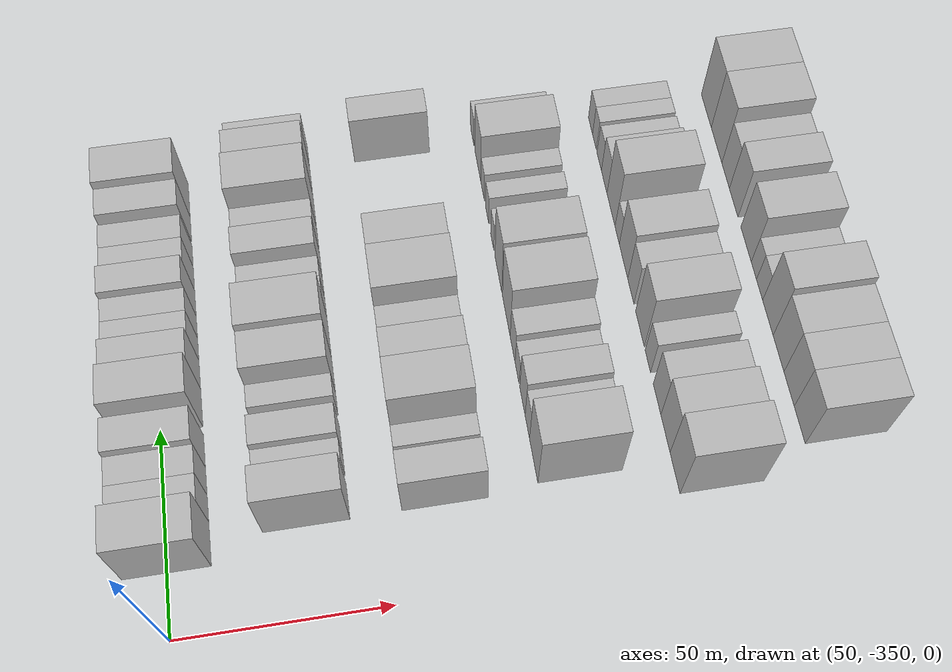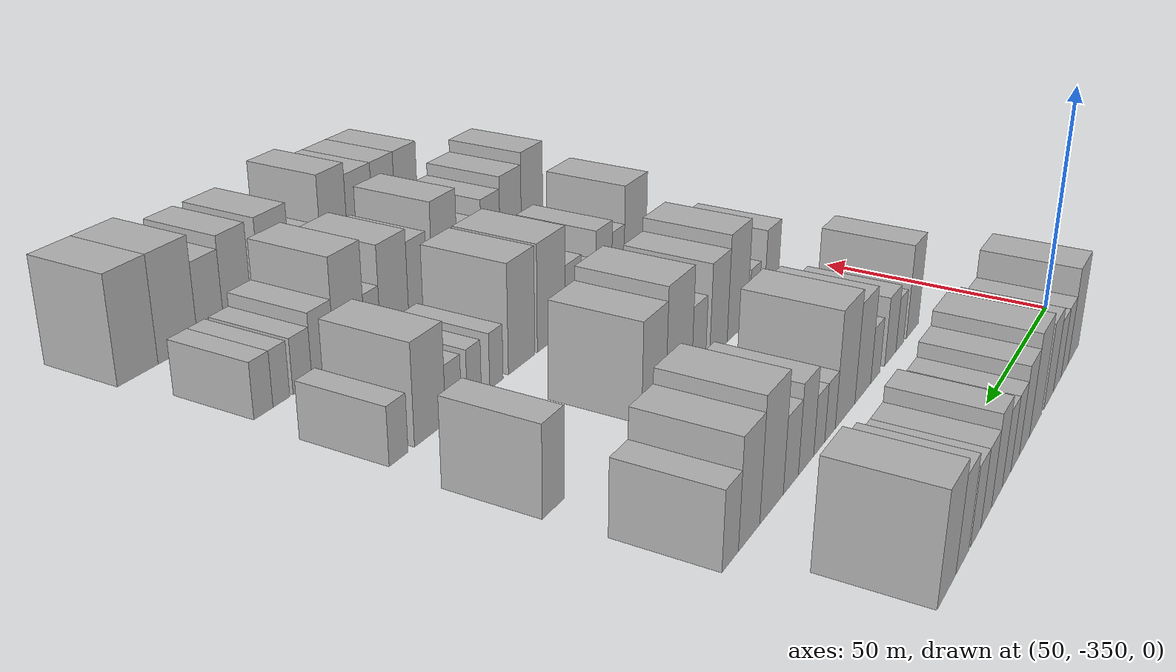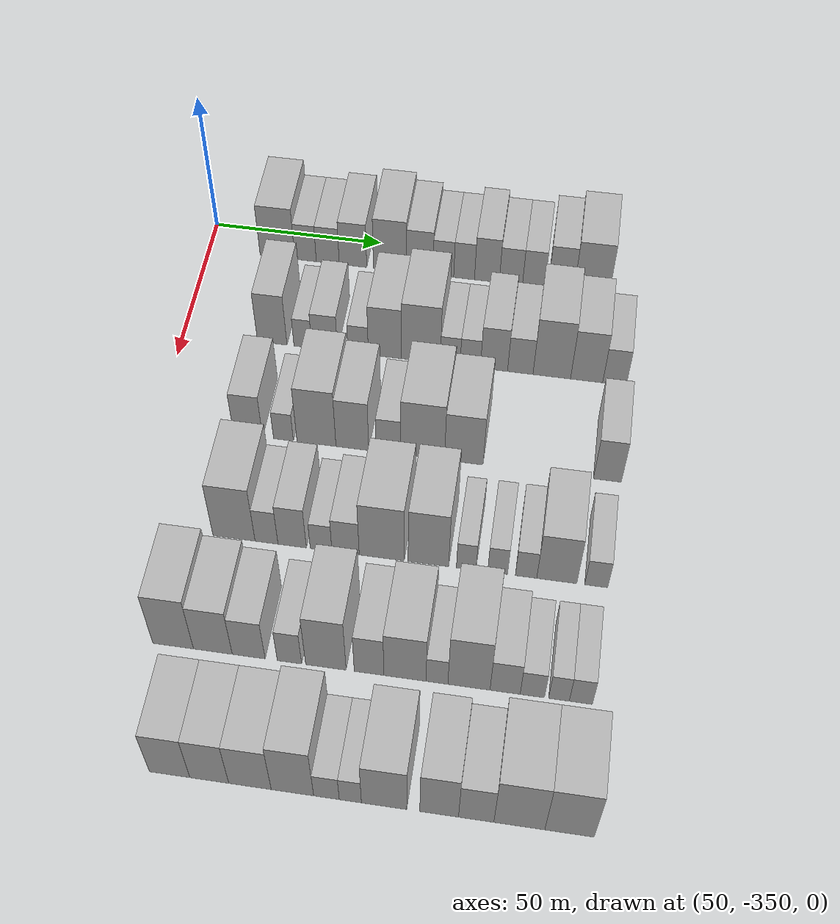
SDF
<sdf version="1.6">
 <world name="default">
  <model name="building_22">
   <static>1</static>
   <pose>50.0000 -329.4277 0 0.000000 0.000000 0.000000</pose>
   <link name="link">
    <pose>0 0 10.50 0 0 0</pose>
    <collision name="collision"><geometry><box><size>20.0000 10.4413 21.0000</size></box></geometry></collision>
    <visual name="visual">
     <cast_shadows>0</cast_shadows>
     <geometry><box><size>20.0000 10.4413 21.0000</size></box></geometry>
     <material>
      <script>
       <uri>model://HANNAS_wall/materials/scripts</uri>
       <uri>model://HANNAS_wall/materials/textures</uri>
       <name>vrc/HANNAS_wall</name>
      </script>
     </material>
    </visual>
   </link>
  </model>
  <model name="building_23">
   <static>1</static>
   <pose>50.0000 -320.9701 0 0.000000 0.000000 0.000000</pose>
   <link name="link">
    <pose>0 0 7.50 0 0 0</pose>
    <collision name="collision"><geometry><box><size>20.0000 6.4739 15.0000</size></box></geometry></collision>
    <visual name="visual">
     <cast_shadows>0</cast_shadows>
     <geometry><box><size>20.0000 6.4739 15.0000</size></box></geometry>
     <material>
      <script>
       <uri>model://HANNAS_wall/materials/scripts</uri>
       <uri>model://HANNAS_wall/materials/textures</uri>
       <name>vrc/HANNAS_wall</name>
      </script>
     </material>
    </visual>
   </link>
  </model>
  <model name="building_24">
   <static>1</static>
   <pose>50.0000 -314.2927 0 0.000000 0.000000 0.000000</pose>
   <link name="link">
    <pose>0 0 7.50 0 0 0</pose>
    <collision name="collision"><geometry><box><size>20.0000 6.8808 15.0000</size></box></geometry></collision>
    <visual name="visual">
     <cast_shadows>0</cast_shadows>
     <geometry><box><size>20.0000 6.8808 15.0000</size></box></geometry>
     <material>
      <script>
       <uri>model://HANNAS_wall/materials/scripts</uri>
       <uri>model://HANNAS_wall/materials/textures</uri>
       <name>vrc/HANNAS_wall</name>
      </script>
     </material>
    </visual>
   </link>
  </model>
  <model name="building_25">
   <static>1</static>
   <pose>50.0000 -306.7463 0 0.000000 0.000000 0.000000</pose>
   <link name="link">
    <pose>0 0 9.00 0 0 0</pose>
    <collision name="collision"><geometry><box><size>20.0000 8.2120 18.0000</size></box></geometry></collision>
    <visual name="visual">
     <cast_shadows>0</cast_shadows>
     <geometry><box><size>20.0000 8.2120 18.0000</size></box></geometry>
     <material>
      <script>
       <uri>model://HANNAS_wall/materials/scripts</uri>
       <uri>model://HANNAS_wall/materials/textures</uri>
       <name>vrc/HANNAS_wall</name>
      </script>
     </material>
    </visual>
   </link>
  </model>
  <model name="building_26">
   <static>1</static>
   <pose>50.0000 -295.7055 0 0.000000 0.000000 0.000000</pose>
   <link name="link">
    <pose>0 0 10.50 0 0 0</pose>
    <collision name="collision"><geometry><box><size>20.0000 9.8696 21.0000</size></box></geometry></collision>
    <visual name="visual">
     <cast_shadows>0</cast_shadows>
     <geometry><box><size>20.0000 9.8696 21.0000</size></box></geometry>
     <material>
      <script>
       <uri>model://HANNAS_wall/materials/scripts</uri>
       <uri>model://HANNAS_wall/materials/textures</uri>
       <name>vrc/HANNAS_wall</name>
      </script>
     </material>
    </visual>
   </link>
  </model>
  <model name="building_27">
   <static>1</static>
   <pose>50.0000 -286.8508 0 0.000000 0.000000 0.000000</pose>
   <link name="link">
    <pose>0 0 9.00 0 0 0</pose>
    <collision name="collision"><geometry><box><size>20.0000 7.8398 18.0000</size></box></geometry></collision>
    <visual name="visual">
     <cast_shadows>0</cast_shadows>
     <geometry><box><size>20.0000 7.8398 18.0000</size></box></geometry>
     <material>
      <script>
       <uri>model://HANNAS_wall/materials/scripts</uri>
       <uri>model://HANNAS_wall/materials/textures</uri>
       <name>vrc/HANNAS_wall</name>
      </script>
     </material>
    </visual>
   </link>
  </model>
  <model name="building_28">
   <static>1</static>
   <pose>50.0000 -279.8748 0 0.000000 0.000000 0.000000</pose>
   <link name="link">
    <pose>0 0 7.50 0 0 0</pose>
    <collision name="collision"><geometry><box><size>20.0000 6.1122 15.0000</size></box></geometry></collision>
    <visual name="visual">
     <cast_shadows>0</cast_shadows>
     <geometry><box><size>20.0000 6.1122 15.0000</size></box></geometry>
     <material>
      <script>
       <uri>model://HANNAS_wall/materials/scripts</uri>
       <uri>model://HANNAS_wall/materials/textures</uri>
       <name>vrc/HANNAS_wall</name>
      </script>
     </material>
    </visual>
   </link>
  </model>
  <model name="building_29">
   <static>1</static>
   <pose>50.0000 -273.7574 0 0.000000 0.000000 0.000000</pose>
   <link name="link">
    <pose>0 0 7.50 0 0 0</pose>
    <collision name="collision"><geometry><box><size>20.0000 6.1226 15.0000</size></box></geometry></collision>
    <visual name="visual">
     <cast_shadows>0</cast_shadows>
     <geometry><box><size>20.0000 6.1226 15.0000</size></box></geometry>
     <material>
      <script>
       <uri>model://HANNAS_wall/materials/scripts</uri>
       <uri>model://HANNAS_wall/materials/textures</uri>
       <name>vrc/HANNAS_wall</name>
      </script>
     </material>
    </visual>
   </link>
  </model>
  <model name="building_30">
   <static>1</static>
   <pose>50.0000 -267.0461 0 0.000000 0.000000 0.000000</pose>
   <link name="link">
    <pose>0 0 9.00 0 0 0</pose>
    <collision name="collision"><geometry><box><size>20.0000 7.3000 18.0000</size></box></geometry></collision>
    <visual name="visual">
     <cast_shadows>0</cast_shadows>
     <geometry><box><size>20.0000 7.3000 18.0000</size></box></geometry>
     <material>
      <script>
       <uri>model://HANNAS_wall/materials/scripts</uri>
       <uri>model://HANNAS_wall/materials/textures</uri>
       <name>vrc/HANNAS_wall</name>
      </script>
     </material>
    </visual>
   </link>
  </model>
  <model name="building_31">
   <static>1</static>
   <pose>50.0000 -259.9950 0 0.000000 0.000000 0.000000</pose>
   <link name="link">
    <pose>0 0 7.50 0 0 0</pose>
    <collision name="collision"><geometry><box><size>20.0000 6.8023 15.0000</size></box></geometry></collision>
    <visual name="visual">
     <cast_shadows>0</cast_shadows>
     <geometry><box><size>20.0000 6.8023 15.0000</size></box></geometry>
     <material>
      <script>
       <uri>model://HANNAS_wall/materials/scripts</uri>
       <uri>model://HANNAS_wall/materials/textures</uri>
       <name>vrc/HANNAS_wall</name>
      </script>
     </material>
    </visual>
   </link>
  </model>
  <model name="building_32">
   <static>1</static>
   <pose>50.0000 -253.3541 0 0.000000 0.000000 0.000000</pose>
   <link name="link">
    <pose>0 0 7.50 0 0 0</pose>
    <collision name="collision"><geometry><box><size>20.0000 6.4795 15.0000</size></box></geometry></collision>
    <visual name="visual">
     <cast_shadows>0</cast_shadows>
     <geometry><box><size>20.0000 6.4795 15.0000</size></box></geometry>
     <material>
      <script>
       <uri>model://HANNAS_wall/materials/scripts</uri>
       <uri>model://HANNAS_wall/materials/textures</uri>
       <name>vrc/HANNAS_wall</name>
      </script>
     </material>
    </visual>
   </link>
  </model>
  <model name="building_33">
   <static>1</static>
   <pose>50.0000 -245.3383 0 0.000000 0.000000 0.000000</pose>
   <link name="link">
    <pose>0 0 9.00 0 0 0</pose>
    <collision name="collision"><geometry><box><size>20.0000 7.5522 18.0000</size></box></geometry></collision>
    <visual name="visual">
     <cast_shadows>0</cast_shadows>
     <geometry><box><size>20.0000 7.5522 18.0000</size></box></geometry>
     <material>
      <script>
       <uri>model://HANNAS_wall/materials/scripts</uri>
       <uri>model://HANNAS_wall/materials/textures</uri>
       <name>vrc/HANNAS_wall</name>
      </script>
     </material>
    </visual>
   </link>
  </model>
  <model name="building_34">
   <static>1</static>
   <pose>50.0000 -236.4442 0 0.000000 0.000000 0.000000</pose>
   <link name="link">
    <pose>0 0 10.50 0 0 0</pose>
    <collision name="collision"><geometry><box><size>20.0000 10.2360 21.0000</size></box></geometry></collision>
    <visual name="visual">
     <cast_shadows>0</cast_shadows>
     <geometry><box><size>20.0000 10.2360 21.0000</size></box></geometry>
     <material>
      <script>
       <uri>model://HANNAS_wall/materials/scripts</uri>
       <uri>model://HANNAS_wall/materials/textures</uri>
       <name>vrc/HANNAS_wall</name>
      </script>
     </material>
    </visual>
   </link>
  </model>
  <model name="building_141">
   <static>1</static>
   <pose>82.0000 -324.4266 0 0.000000 0.000000 0.000000</pose>
   <link name="link">
    <pose>0 0 10.50 0 0 0</pose>
    <collision name="collision"><geometry><box><size>20.0000 8.4989 21.0000</size></box></geometry></collision>
    <visual name="visual">
     <cast_shadows>0</cast_shadows>
     <geometry><box><size>20.0000 8.4989 21.0000</size></box></geometry>
     <material>
      <script>
       <uri>model://HANNAS_wall/materials/scripts</uri>
       <uri>model://HANNAS_wall/materials/textures</uri>
       <name>vrc/HANNAS_wall</name>
      </script>
     </material>
    </visual>
   </link>
  </model>
  <model name="building_142">
   <static>1</static>
   <pose>82.0000 -315.6190 0 0.000000 0.000000 0.000000</pose>
   <link name="link">
    <pose>0 0 6.00 0 0 0</pose>
    <collision name="collision"><geometry><box><size>20.0000 5.1162 12.0000</size></box></geometry></collision>
    <visual name="visual">
     <cast_shadows>0</cast_shadows>
     <geometry><box><size>20.0000 5.1162 12.0000</size></box></geometry>
     <material>
      <script>
       <uri>model://HANNAS_wall/materials/scripts</uri>
       <uri>model://HANNAS_wall/materials/textures</uri>
       <name>vrc/HANNAS_wall</name>
      </script>
     </material>
    </visual>
   </link>
  </model>
  <model name="building_143">
   <static>1</static>
   <pose>82.0000 -309.3774 0 0.000000 0.000000 0.000000</pose>
   <link name="link">
    <pose>0 0 7.50 0 0 0</pose>
    <collision name="collision"><geometry><box><size>20.0000 7.3671 15.0000</size></box></geometry></collision>
    <visual name="visual">
     <cast_shadows>0</cast_shadows>
     <geometry><box><size>20.0000 7.3671 15.0000</size></box></geometry>
     <material>
      <script>
       <uri>model://HANNAS_wall/materials/scripts</uri>
       <uri>model://HANNAS_wall/materials/textures</uri>
       <name>vrc/HANNAS_wall</name>
      </script>
     </material>
    </visual>
   </link>
  </model>
  <model name="building_144">
   <static>1</static>
   <pose>82.0000 -299.7859 0 0.000000 0.000000 0.000000</pose>
   <link name="link">
    <pose>0 0 6.00 0 0 0</pose>
    <collision name="collision"><geometry><box><size>20.0000 5.8158 12.0000</size></box></geometry></collision>
    <visual name="visual">
     <cast_shadows>0</cast_shadows>
     <geometry><box><size>20.0000 5.8158 12.0000</size></box></geometry>
     <material>
      <script>
       <uri>model://HANNAS_wall/materials/scripts</uri>
       <uri>model://HANNAS_wall/materials/textures</uri>
       <name>vrc/HANNAS_wall</name>
      </script>
     </material>
    </visual>
   </link>
  </model>
  <model name="building_145">
   <static>1</static>
   <pose>82.0000 -292.1682 0 0.000000 0.000000 0.000000</pose>
   <link name="link">
    <pose>0 0 10.50 0 0 0</pose>
    <collision name="collision"><geometry><box><size>20.0000 9.4196 21.0000</size></box></geometry></collision>
    <visual name="visual">
     <cast_shadows>0</cast_shadows>
     <geometry><box><size>20.0000 9.4196 21.0000</size></box></geometry>
     <material>
      <script>
       <uri>model://HANNAS_wall/materials/scripts</uri>
       <uri>model://HANNAS_wall/materials/textures</uri>
       <name>vrc/HANNAS_wall</name>
      </script>
     </material>
    </visual>
   </link>
  </model>
  <model name="building_146">
   <static>1</static>
   <pose>82.0000 -281.9558 0 0.000000 0.000000 0.000000</pose>
   <link name="link">
    <pose>0 0 12.00 0 0 0</pose>
    <collision name="collision"><geometry><box><size>20.0000 11.0052 24.0000</size></box></geometry></collision>
    <visual name="visual">
     <cast_shadows>0</cast_shadows>
     <geometry><box><size>20.0000 11.0052 24.0000</size></box></geometry>
     <material>
      <script>
       <uri>model://HANNAS_wall/materials/scripts</uri>
       <uri>model://HANNAS_wall/materials/textures</uri>
       <name>vrc/HANNAS_wall</name>
      </script>
     </material>
    </visual>
   </link>
  </model>
  <model name="building_147">
   <static>1</static>
   <pose>82.0000 -273.6542 0 0.000000 0.000000 0.000000</pose>
   <link name="link">
    <pose>0 0 6.00 0 0 0</pose>
    <collision name="collision"><geometry><box><size>20.0000 5.5979 12.0000</size></box></geometry></collision>
    <visual name="visual">
     <cast_shadows>0</cast_shadows>
     <geometry><box><size>20.0000 5.5979 12.0000</size></box></geometry>
     <material>
      <script>
       <uri>model://HANNAS_wall/materials/scripts</uri>
       <uri>model://HANNAS_wall/materials/textures</uri>
       <name>vrc/HANNAS_wall</name>
      </script>
     </material>
    </visual>
   </link>
  </model>
  <model name="building_148">
   <static>1</static>
   <pose>82.0000 -268.0023 0 0.000000 0.000000 0.000000</pose>
   <link name="link">
    <pose>0 0 6.00 0 0 0</pose>
    <collision name="collision"><geometry><box><size>20.0000 5.7060 12.0000</size></box></geometry></collision>
    <visual name="visual">
     <cast_shadows>0</cast_shadows>
     <geometry><box><size>20.0000 5.7060 12.0000</size></box></geometry>
     <material>
      <script>
       <uri>model://HANNAS_wall/materials/scripts</uri>
       <uri>model://HANNAS_wall/materials/textures</uri>
       <name>vrc/HANNAS_wall</name>
      </script>
     </material>
    </visual>
   </link>
  </model>
  <model name="building_149">
   <static>1</static>
   <pose>82.0000 -261.3354 0 0.000000 0.000000 0.000000</pose>
   <link name="link">
    <pose>0 0 9.00 0 0 0</pose>
    <collision name="collision"><geometry><box><size>20.0000 7.6278 18.0000</size></box></geometry></collision>
    <visual name="visual">
     <cast_shadows>0</cast_shadows>
     <geometry><box><size>20.0000 7.6278 18.0000</size></box></geometry>
     <material>
      <script>
       <uri>model://HANNAS_wall/materials/scripts</uri>
       <uri>model://HANNAS_wall/materials/textures</uri>
       <name>vrc/HANNAS_wall</name>
      </script>
     </material>
    </visual>
   </link>
  </model>
  <model name="building_150">
   <static>1</static>
   <pose>82.0000 -253.9675 0 0.000000 0.000000 0.000000</pose>
   <link name="link">
    <pose>0 0 7.50 0 0 0</pose>
    <collision name="collision"><geometry><box><size>20.0000 7.1080 15.0000</size></box></geometry></collision>
    <visual name="visual">
     <cast_shadows>0</cast_shadows>
     <geometry><box><size>20.0000 7.1080 15.0000</size></box></geometry>
     <material>
      <script>
       <uri>model://HANNAS_wall/materials/scripts</uri>
       <uri>model://HANNAS_wall/materials/textures</uri>
       <name>vrc/HANNAS_wall</name>
      </script>
     </material>
    </visual>
   </link>
  </model>
  <model name="building_151">
   <static>1</static>
   <pose>82.0000 -245.1760 0 0.000000 0.000000 0.000000</pose>
   <link name="link">
    <pose>0 0 12.00 0 0 0</pose>
    <collision name="collision"><geometry><box><size>20.0000 10.4751 24.0000</size></box></geometry></collision>
    <visual name="visual">
     <cast_shadows>0</cast_shadows>
     <geometry><box><size>20.0000 10.4751 24.0000</size></box></geometry>
     <material>
      <script>
       <uri>model://HANNAS_wall/materials/scripts</uri>
       <uri>model://HANNAS_wall/materials/textures</uri>
       <name>vrc/HANNAS_wall</name>
      </script>
     </material>
    </visual>
   </link>
  </model>
  <model name="building_152">
   <static>1</static>
   <pose>82.0000 -235.4688 0 0.000000 0.000000 0.000000</pose>
   <link name="link">
    <pose>0 0 10.50 0 0 0</pose>
    <collision name="collision"><geometry><box><size>20.0000 8.9392 21.0000</size></box></geometry></collision>
    <visual name="visual">
     <cast_shadows>0</cast_shadows>
     <geometry><box><size>20.0000 8.9392 21.0000</size></box></geometry>
     <material>
      <script>
       <uri>model://HANNAS_wall/materials/scripts</uri>
       <uri>model://HANNAS_wall/materials/textures</uri>
       <name>vrc/HANNAS_wall</name>
      </script>
     </material>
    </visual>
   </link>
  </model>
  <model name="building_153">
   <static>1</static>
   <pose>82.0000 -227.7377 0 0.000000 0.000000 0.000000</pose>
   <link name="link">
    <pose>0 0 7.50 0 0 0</pose>
    <collision name="collision"><geometry><box><size>20.0000 6.5231 15.0000</size></box></geometry></collision>
    <visual name="visual">
     <cast_shadows>0</cast_shadows>
     <geometry><box><size>20.0000 6.5231 15.0000</size></box></geometry>
     <material>
      <script>
       <uri>model://HANNAS_wall/materials/scripts</uri>
       <uri>model://HANNAS_wall/materials/textures</uri>
       <name>vrc/HANNAS_wall</name>
      </script>
     </material>
    </visual>
   </link>
  </model>
  <model name="building_262">
   <static>1</static>
   <pose>114.0000 -324.5032 0 0.000000 0.000000 0.000000</pose>
   <link name="link">
    <pose>0 0 9.00 0 0 0</pose>
    <collision name="collision"><geometry><box><size>20.0000 8.0149 18.0000</size></box></geometry></collision>
    <visual name="visual">
     <cast_shadows>0</cast_shadows>
     <geometry><box><size>20.0000 8.0149 18.0000</size></box></geometry>
     <material>
      <script>
       <uri>model://HANNAS_wall/materials/scripts</uri>
       <uri>model://HANNAS_wall/materials/textures</uri>
       <name>vrc/HANNAS_wall</name>
      </script>
     </material>
    </visual>
   </link>
  </model>
  <model name="building_263">
   <static>1</static>
   <pose>114.0000 -314.7784 0 0.000000 0.000000 0.000000</pose>
   <link name="link">
    <pose>0 0 6.00 0 0 0</pose>
    <collision name="collision"><geometry><box><size>20.0000 5.4347 12.0000</size></box></geometry></collision>
    <visual name="visual">
     <cast_shadows>0</cast_shadows>
     <geometry><box><size>20.0000 5.4347 12.0000</size></box></geometry>
     <material>
      <script>
       <uri>model://HANNAS_wall/materials/scripts</uri>
       <uri>model://HANNAS_wall/materials/textures</uri>
       <name>vrc/HANNAS_wall</name>
      </script>
     </material>
    </visual>
   </link>
  </model>
  <model name="building_264">
   <static>1</static>
   <pose>114.0000 -305.7357 0 0.000000 0.000000 0.000000</pose>
   <link name="link">
    <pose>0 0 12.00 0 0 0</pose>
    <collision name="collision"><geometry><box><size>20.0000 10.6507 24.0000</size></box></geometry></collision>
    <visual name="visual">
     <cast_shadows>0</cast_shadows>
     <geometry><box><size>20.0000 10.6507 24.0000</size></box></geometry>
     <material>
      <script>
       <uri>model://HANNAS_wall/materials/scripts</uri>
       <uri>model://HANNAS_wall/materials/textures</uri>
       <name>vrc/HANNAS_wall</name>
      </script>
     </material>
    </visual>
   </link>
  </model>
  <model name="building_265">
   <static>1</static>
   <pose>114.0000 -295.9464 0 0.000000 0.000000 0.000000</pose>
   <link name="link">
    <pose>0 0 10.50 0 0 0</pose>
    <collision name="collision"><geometry><box><size>20.0000 8.9280 21.0000</size></box></geometry></collision>
    <visual name="visual">
     <cast_shadows>0</cast_shadows>
     <geometry><box><size>20.0000 8.9280 21.0000</size></box></geometry>
     <material>
      <script>
       <uri>model://HANNAS_wall/materials/scripts</uri>
       <uri>model://HANNAS_wall/materials/textures</uri>
       <name>vrc/HANNAS_wall</name>
      </script>
     </material>
    </visual>
   </link>
  </model>
  <model name="building_266">
   <static>1</static>
   <pose>114.0000 -286.1428 0 0.000000 0.000000 0.000000</pose>
   <link name="link">
    <pose>0 0 7.50 0 0 0</pose>
    <collision name="collision"><geometry><box><size>20.0000 6.6791 15.0000</size></box></geometry></collision>
    <visual name="visual">
     <cast_shadows>0</cast_shadows>
     <geometry><box><size>20.0000 6.6791 15.0000</size></box></geometry>
     <material>
      <script>
       <uri>model://HANNAS_wall/materials/scripts</uri>
       <uri>model://HANNAS_wall/materials/textures</uri>
       <name>vrc/HANNAS_wall</name>
      </script>
     </material>
    </visual>
   </link>
  </model>
  <model name="building_267">
   <static>1</static>
   <pose>114.0000 -276.8975 0 0.000000 0.000000 0.000000</pose>
   <link name="link">
    <pose>0 0 12.00 0 0 0</pose>
    <collision name="collision"><geometry><box><size>20.0000 11.8116 24.0000</size></box></geometry></collision>
    <visual name="visual">
     <cast_shadows>0</cast_shadows>
     <geometry><box><size>20.0000 11.8116 24.0000</size></box></geometry>
     <material>
      <script>
       <uri>model://HANNAS_wall/materials/scripts</uri>
       <uri>model://HANNAS_wall/materials/textures</uri>
       <name>vrc/HANNAS_wall</name>
      </script>
     </material>
    </visual>
   </link>
  </model>
  <model name="building_268">
   <static>1</static>
   <pose>114.0000 -265.8186 0 0.000000 0.000000 0.000000</pose>
   <link name="link">
    <pose>0 0 10.50 0 0 0</pose>
    <collision name="collision"><geometry><box><size>20.0000 10.3462 21.0000</size></box></geometry></collision>
    <visual name="visual">
     <cast_shadows>0</cast_shadows>
     <geometry><box><size>20.0000 10.3462 21.0000</size></box></geometry>
     <material>
      <script>
       <uri>model://HANNAS_wall/materials/scripts</uri>
       <uri>model://HANNAS_wall/materials/textures</uri>
       <name>vrc/HANNAS_wall</name>
      </script>
     </material>
    </visual>
   </link>
  </model>
  <model name="building_269">
   <static>1</static>
   <pose>114.0000 -227.5758 0 0.000000 0.000000 0.000000</pose>
   <link name="link">
    <pose>0 0 9.00 0 0 0</pose>
    <collision name="collision"><geometry><box><size>20.0000 7.3798 18.0000</size></box></geometry></collision>
    <visual name="visual">
     <cast_shadows>0</cast_shadows>
     <geometry><box><size>20.0000 7.3798 18.0000</size></box></geometry>
     <material>
      <script>
       <uri>model://HANNAS_wall/materials/scripts</uri>
       <uri>model://HANNAS_wall/materials/textures</uri>
       <name>vrc/HANNAS_wall</name>
      </script>
     </material>
    </visual>
   </link>
  </model>
  <model name="building_380">
   <static>1</static>
   <pose>146.0000 -321.3067 0 0.000000 0.000000 0.000000</pose>
   <link name="link">
    <pose>0 0 12.00 0 0 0</pose>
    <collision name="collision"><geometry><box><size>20.0000 11.0587 24.0000</size></box></geometry></collision>
    <visual name="visual">
     <cast_shadows>0</cast_shadows>
     <geometry><box><size>20.0000 11.0587 24.0000</size></box></geometry>
     <material>
      <script>
       <uri>model://HANNAS_wall/materials/scripts</uri>
       <uri>model://HANNAS_wall/materials/textures</uri>
       <name>vrc/HANNAS_wall</name>
      </script>
     </material>
    </visual>
   </link>
  </model>
  <model name="building_381">
   <static>1</static>
   <pose>146.0000 -312.7751 0 0.000000 0.000000 0.000000</pose>
   <link name="link">
    <pose>0 0 7.50 0 0 0</pose>
    <collision name="collision"><geometry><box><size>20.0000 6.0044 15.0000</size></box></geometry></collision>
    <visual name="visual">
     <cast_shadows>0</cast_shadows>
     <geometry><box><size>20.0000 6.0044 15.0000</size></box></geometry>
     <material>
      <script>
       <uri>model://HANNAS_wall/materials/scripts</uri>
       <uri>model://HANNAS_wall/materials/textures</uri>
       <name>vrc/HANNAS_wall</name>
      </script>
     </material>
    </visual>
   </link>
  </model>
  <model name="building_382">
   <static>1</static>
   <pose>146.0000 -306.0721 0 0.000000 0.000000 0.000000</pose>
   <link name="link">
    <pose>0 0 9.00 0 0 0</pose>
    <collision name="collision"><geometry><box><size>20.0000 7.4016 18.0000</size></box></geometry></collision>
    <visual name="visual">
     <cast_shadows>0</cast_shadows>
     <geometry><box><size>20.0000 7.4016 18.0000</size></box></geometry>
     <material>
      <script>
       <uri>model://HANNAS_wall/materials/scripts</uri>
       <uri>model://HANNAS_wall/materials/textures</uri>
       <name>vrc/HANNAS_wall</name>
      </script>
     </material>
    </visual>
   </link>
  </model>
  <model name="building_383">
   <static>1</static>
   <pose>146.0000 -298.5532 0 0.000000 0.000000 0.000000</pose>
   <link name="link">
    <pose>0 0 6.00 0 0 0</pose>
    <collision name="collision"><geometry><box><size>20.0000 5.6363 12.0000</size></box></geometry></collision>
    <visual name="visual">
     <cast_shadows>0</cast_shadows>
     <geometry><box><size>20.0000 5.6363 12.0000</size></box></geometry>
     <material>
      <script>
       <uri>model://HANNAS_wall/materials/scripts</uri>
       <uri>model://HANNAS_wall/materials/textures</uri>
       <name>vrc/HANNAS_wall</name>
      </script>
     </material>
    </visual>
   </link>
  </model>
  <model name="building_384">
   <static>1</static>
   <pose>146.0000 -292.2032 0 0.000000 0.000000 0.000000</pose>
   <link name="link">
    <pose>0 0 7.50 0 0 0</pose>
    <collision name="collision"><geometry><box><size>20.0000 7.0637 15.0000</size></box></geometry></collision>
    <visual name="visual">
     <cast_shadows>0</cast_shadows>
     <geometry><box><size>20.0000 7.0637 15.0000</size></box></geometry>
     <material>
      <script>
       <uri>model://HANNAS_wall/materials/scripts</uri>
       <uri>model://HANNAS_wall/materials/textures</uri>
       <name>vrc/HANNAS_wall</name>
      </script>
     </material>
    </visual>
   </link>
  </model>
  <model name="building_385">
   <static>1</static>
   <pose>146.0000 -282.8648 0 0.000000 0.000000 0.000000</pose>
   <link name="link">
    <pose>0 0 12.00 0 0 0</pose>
    <collision name="collision"><geometry><box><size>20.0000 11.6129 24.0000</size></box></geometry></collision>
    <visual name="visual">
     <cast_shadows>0</cast_shadows>
     <geometry><box><size>20.0000 11.6129 24.0000</size></box></geometry>
     <material>
      <script>
       <uri>model://HANNAS_wall/materials/scripts</uri>
       <uri>model://HANNAS_wall/materials/textures</uri>
       <name>vrc/HANNAS_wall</name>
      </script>
     </material>
    </visual>
   </link>
  </model>
  <model name="building_386">
   <static>1</static>
   <pose>146.0000 -270.8707 0 0.000000 0.000000 0.000000</pose>
   <link name="link">
    <pose>0 0 12.00 0 0 0</pose>
    <collision name="collision"><geometry><box><size>20.0000 10.3752 24.0000</size></box></geometry></collision>
    <visual name="visual">
     <cast_shadows>0</cast_shadows>
     <geometry><box><size>20.0000 10.3752 24.0000</size></box></geometry>
     <material>
      <script>
       <uri>model://HANNAS_wall/materials/scripts</uri>
       <uri>model://HANNAS_wall/materials/textures</uri>
       <name>vrc/HANNAS_wall</name>
      </script>
     </material>
    </visual>
   </link>
  </model>
  <model name="building_387">
   <static>1</static>
   <pose>146.0000 -261.1918 0 0.000000 0.000000 0.000000</pose>
   <link name="link">
    <pose>0 0 6.00 0 0 0</pose>
    <collision name="collision"><geometry><box><size>20.0000 4.9827 12.0000</size></box></geometry></collision>
    <visual name="visual">
     <cast_shadows>0</cast_shadows>
     <geometry><box><size>20.0000 4.9827 12.0000</size></box></geometry>
     <material>
      <script>
       <uri>model://HANNAS_wall/materials/scripts</uri>
       <uri>model://HANNAS_wall/materials/textures</uri>
       <name>vrc/HANNAS_wall</name>
      </script>
     </material>
    </visual>
   </link>
  </model>
  <model name="building_388">
   <static>1</static>
   <pose>146.0000 -253.1765 0 0.000000 0.000000 0.000000</pose>
   <link name="link">
    <pose>0 0 6.00 0 0 0</pose>
    <collision name="collision"><geometry><box><size>20.0000 5.0477 12.0000</size></box></geometry></collision>
    <visual name="visual">
     <cast_shadows>0</cast_shadows>
     <geometry><box><size>20.0000 5.0477 12.0000</size></box></geometry>
     <material>
      <script>
       <uri>model://HANNAS_wall/materials/scripts</uri>
       <uri>model://HANNAS_wall/materials/textures</uri>
       <name>vrc/HANNAS_wall</name>
      </script>
     </material>
    </visual>
   </link>
  </model>
  <model name="building_389">
   <static>1</static>
   <pose>146.0000 -245.9485 0 0.000000 0.000000 0.000000</pose>
   <link name="link">
    <pose>0 0 6.00 0 0 0</pose>
    <collision name="collision"><geometry><box><size>20.0000 5.4083 12.0000</size></box></geometry></collision>
    <visual name="visual">
     <cast_shadows>0</cast_shadows>
     <geometry><box><size>20.0000 5.4083 12.0000</size></box></geometry>
     <material>
      <script>
       <uri>model://HANNAS_wall/materials/scripts</uri>
       <uri>model://HANNAS_wall/materials/textures</uri>
       <name>vrc/HANNAS_wall</name>
      </script>
     </material>
    </visual>
   </link>
  </model>
  <model name="building_390">
   <static>1</static>
   <pose>146.0000 -238.1880 0 0.000000 0.000000 0.000000</pose>
   <link name="link">
    <pose>0 0 10.50 0 0 0</pose>
    <collision name="collision"><geometry><box><size>20.0000 10.1129 21.0000</size></box></geometry></collision>
    <visual name="visual">
     <cast_shadows>0</cast_shadows>
     <geometry><box><size>20.0000 10.1129 21.0000</size></box></geometry>
     <material>
      <script>
       <uri>model://HANNAS_wall/materials/scripts</uri>
       <uri>model://HANNAS_wall/materials/textures</uri>
       <name>vrc/HANNAS_wall</name>
      </script>
     </material>
    </visual>
   </link>
  </model>
  <model name="building_391">
   <static>1</static>
   <pose>146.0000 -228.2304 0 0.000000 0.000000 0.000000</pose>
   <link name="link">
    <pose>0 0 6.00 0 0 0</pose>
    <collision name="collision"><geometry><box><size>20.0000 5.8024 12.0000</size></box></geometry></collision>
    <visual name="visual">
     <cast_shadows>0</cast_shadows>
     <geometry><box><size>20.0000 5.8024 12.0000</size></box></geometry>
     <material>
      <script>
       <uri>model://HANNAS_wall/materials/scripts</uri>
       <uri>model://HANNAS_wall/materials/textures</uri>
       <name>vrc/HANNAS_wall</name>
      </script>
     </material>
    </visual>
   </link>
  </model>
  <model name="building_491">
   <static>1</static>
   <pose>178.0000 -329.4429 0 0.000000 0.000000 0.000000</pose>
   <link name="link">
    <pose>0 0 12.00 0 0 0</pose>
    <collision name="collision"><geometry><box><size>20.0000 10.2020 24.0000</size></box></geometry></collision>
    <visual name="visual">
     <cast_shadows>0</cast_shadows>
     <geometry><box><size>20.0000 10.2020 24.0000</size></box></geometry>
     <material>
      <script>
       <uri>model://HANNAS_wall/materials/scripts</uri>
       <uri>model://HANNAS_wall/materials/textures</uri>
       <name>vrc/HANNAS_wall</name>
      </script>
     </material>
    </visual>
   </link>
  </model>
  <model name="building_492">
   <static>1</static>
   <pose>178.0000 -319.4977 0 0.000000 0.000000 0.000000</pose>
   <link name="link">
    <pose>0 0 10.50 0 0 0</pose>
    <collision name="collision"><geometry><box><size>20.0000 9.6884 21.0000</size></box></geometry></collision>
    <visual name="visual">
     <cast_shadows>0</cast_shadows>
     <geometry><box><size>20.0000 9.6884 21.0000</size></box></geometry>
     <material>
      <script>
       <uri>model://HANNAS_wall/materials/scripts</uri>
       <uri>model://HANNAS_wall/materials/textures</uri>
       <name>vrc/HANNAS_wall</name>
      </script>
     </material>
    </visual>
   </link>
  </model>
  <model name="building_493">
   <static>1</static>
   <pose>178.0000 -310.5613 0 0.000000 0.000000 0.000000</pose>
   <link name="link">
    <pose>0 0 9.00 0 0 0</pose>
    <collision name="collision"><geometry><box><size>20.0000 8.1845 18.0000</size></box></geometry></collision>
    <visual name="visual">
     <cast_shadows>0</cast_shadows>
     <geometry><box><size>20.0000 8.1845 18.0000</size></box></geometry>
     <material>
      <script>
       <uri>model://HANNAS_wall/materials/scripts</uri>
       <uri>model://HANNAS_wall/materials/textures</uri>
       <name>vrc/HANNAS_wall</name>
      </script>
     </material>
    </visual>
   </link>
  </model>
  <model name="building_494">
   <static>1</static>
   <pose>178.0000 -300.4540 0 0.000000 0.000000 0.000000</pose>
   <link name="link">
    <pose>0 0 7.50 0 0 0</pose>
    <collision name="collision"><geometry><box><size>20.0000 6.0300 15.0000</size></box></geometry></collision>
    <visual name="visual">
     <cast_shadows>0</cast_shadows>
     <geometry><box><size>20.0000 6.0300 15.0000</size></box></geometry>
     <material>
      <script>
       <uri>model://HANNAS_wall/materials/scripts</uri>
       <uri>model://HANNAS_wall/materials/textures</uri>
       <name>vrc/HANNAS_wall</name>
      </script>
     </material>
    </visual>
   </link>
  </model>
  <model name="building_495">
   <static>1</static>
   <pose>178.0000 -291.4595 0 0.000000 0.000000 0.000000</pose>
   <link name="link">
    <pose>0 0 12.00 0 0 0</pose>
    <collision name="collision"><geometry><box><size>20.0000 9.9592 24.0000</size></box></geometry></collision>
    <visual name="visual">
     <cast_shadows>0</cast_shadows>
     <geometry><box><size>20.0000 9.9592 24.0000</size></box></geometry>
     <material>
      <script>
       <uri>model://HANNAS_wall/materials/scripts</uri>
       <uri>model://HANNAS_wall/materials/textures</uri>
       <name>vrc/HANNAS_wall</name>
      </script>
     </material>
    </visual>
   </link>
  </model>
  <model name="building_496">
   <static>1</static>
   <pose>178.0000 -280.8536 0 0.000000 0.000000 0.000000</pose>
   <link name="link">
    <pose>0 0 9.00 0 0 0</pose>
    <collision name="collision"><geometry><box><size>20.0000 7.2526 18.0000</size></box></geometry></collision>
    <visual name="visual">
     <cast_shadows>0</cast_shadows>
     <geometry><box><size>20.0000 7.2526 18.0000</size></box></geometry>
     <material>
      <script>
       <uri>model://HANNAS_wall/materials/scripts</uri>
       <uri>model://HANNAS_wall/materials/textures</uri>
       <name>vrc/HANNAS_wall</name>
      </script>
     </material>
    </visual>
   </link>
  </model>
  <model name="building_497">
   <static>1</static>
   <pose>178.0000 -272.0948 0 0.000000 0.000000 0.000000</pose>
   <link name="link">
    <pose>0 0 10.50 0 0 0</pose>
    <collision name="collision"><geometry><box><size>20.0000 10.2650 21.0000</size></box></geometry></collision>
    <visual name="visual">
     <cast_shadows>0</cast_shadows>
     <geometry><box><size>20.0000 10.2650 21.0000</size></box></geometry>
     <material>
      <script>
       <uri>model://HANNAS_wall/materials/scripts</uri>
       <uri>model://HANNAS_wall/materials/textures</uri>
       <name>vrc/HANNAS_wall</name>
      </script>
     </material>
    </visual>
   </link>
  </model>
  <model name="building_498">
   <static>1</static>
   <pose>178.0000 -264.3018 0 0.000000 0.000000 0.000000</pose>
   <link name="link">
    <pose>0 0 6.00 0 0 0</pose>
    <collision name="collision"><geometry><box><size>20.0000 5.3210 12.0000</size></box></geometry></collision>
    <visual name="visual">
     <cast_shadows>0</cast_shadows>
     <geometry><box><size>20.0000 5.3210 12.0000</size></box></geometry>
     <material>
      <script>
       <uri>model://HANNAS_wall/materials/scripts</uri>
       <uri>model://HANNAS_wall/materials/textures</uri>
       <name>vrc/HANNAS_wall</name>
      </script>
     </material>
    </visual>
   </link>
  </model>
  <model name="building_499">
   <static>1</static>
   <pose>178.0000 -256.5401 0 0.000000 0.000000 0.000000</pose>
   <link name="link">
    <pose>0 0 12.00 0 0 0</pose>
    <collision name="collision"><geometry><box><size>20.0000 10.2024 24.0000</size></box></geometry></collision>
    <visual name="visual">
     <cast_shadows>0</cast_shadows>
     <geometry><box><size>20.0000 10.2024 24.0000</size></box></geometry>
     <material>
      <script>
       <uri>model://HANNAS_wall/materials/scripts</uri>
       <uri>model://HANNAS_wall/materials/textures</uri>
       <name>vrc/HANNAS_wall</name>
      </script>
     </material>
    </visual>
   </link>
  </model>
  <model name="building_500">
   <static>1</static>
   <pose>178.0000 -247.8129 0 0.000000 0.000000 0.000000</pose>
   <link name="link">
    <pose>0 0 7.50 0 0 0</pose>
    <collision name="collision"><geometry><box><size>20.0000 7.2519 15.0000</size></box></geometry></collision>
    <visual name="visual">
     <cast_shadows>0</cast_shadows>
     <geometry><box><size>20.0000 7.2519 15.0000</size></box></geometry>
     <material>
      <script>
       <uri>model://HANNAS_wall/materials/scripts</uri>
       <uri>model://HANNAS_wall/materials/textures</uri>
       <name>vrc/HANNAS_wall</name>
      </script>
     </material>
    </visual>
   </link>
  </model>
  <model name="building_501">
   <static>1</static>
   <pose>178.0000 -241.2607 0 0.000000 0.000000 0.000000</pose>
   <link name="link">
    <pose>0 0 6.00 0 0 0</pose>
    <collision name="collision"><geometry><box><size>20.0000 5.8524 12.0000</size></box></geometry></collision>
    <visual name="visual">
     <cast_shadows>0</cast_shadows>
     <geometry><box><size>20.0000 5.8524 12.0000</size></box></geometry>
     <material>
      <script>
       <uri>model://HANNAS_wall/materials/scripts</uri>
       <uri>model://HANNAS_wall/materials/textures</uri>
       <name>vrc/HANNAS_wall</name>
      </script>
     </material>
    </visual>
   </link>
  </model>
  <model name="building_502">
   <static>1</static>
   <pose>178.0000 -234.8614 0 0.000000 0.000000 0.000000</pose>
   <link name="link">
    <pose>0 0 6.00 0 0 0</pose>
    <collision name="collision"><geometry><box><size>20.0000 4.9463 12.0000</size></box></geometry></collision>
    <visual name="visual">
     <cast_shadows>0</cast_shadows>
     <geometry><box><size>20.0000 4.9463 12.0000</size></box></geometry>
     <material>
      <script>
       <uri>model://HANNAS_wall/materials/scripts</uri>
       <uri>model://HANNAS_wall/materials/textures</uri>
       <name>vrc/HANNAS_wall</name>
      </script>
     </material>
    </visual>
   </link>
  </model>
  <model name="building_503">
   <static>1</static>
   <pose>178.0000 -229.6302 0 0.000000 0.000000 0.000000</pose>
   <link name="link">
    <pose>0 0 6.00 0 0 0</pose>
    <collision name="collision"><geometry><box><size>20.0000 5.5159 12.0000</size></box></geometry></collision>
    <visual name="visual">
     <cast_shadows>0</cast_shadows>
     <geometry><box><size>20.0000 5.5159 12.0000</size></box></geometry>
     <material>
      <script>
       <uri>model://HANNAS_wall/materials/scripts</uri>
       <uri>model://HANNAS_wall/materials/textures</uri>
       <name>vrc/HANNAS_wall</name>
      </script>
     </material>
    </visual>
   </link>
  </model>
  <model name="building_614">
   <static>1</static>
   <pose>210.0000 -322.3581 0 0.000000 0.000000 0.000000</pose>
   <link name="link">
    <pose>0 0 10.50 0 0 0</pose>
    <collision name="collision"><geometry><box><size>20.0000 9.6175 21.0000</size></box></geometry></collision>
    <visual name="visual">
     <cast_shadows>0</cast_shadows>
     <geometry><box><size>20.0000 9.6175 21.0000</size></box></geometry>
     <material>
      <script>
       <uri>model://HANNAS_wall/materials/scripts</uri>
       <uri>model://HANNAS_wall/materials/textures</uri>
       <name>vrc/HANNAS_wall</name>
      </script>
     </material>
    </visual>
   </link>
  </model>
  <model name="building_615">
   <static>1</static>
   <pose>210.0000 -312.9561 0 0.000000 0.000000 0.000000</pose>
   <link name="link">
    <pose>0 0 10.50 0 0 0</pose>
    <collision name="collision"><geometry><box><size>20.0000 9.1866 21.0000</size></box></geometry></collision>
    <visual name="visual">
     <cast_shadows>0</cast_shadows>
     <geometry><box><size>20.0000 9.1866 21.0000</size></box></geometry>
     <material>
      <script>
       <uri>model://HANNAS_wall/materials/scripts</uri>
       <uri>model://HANNAS_wall/materials/textures</uri>
       <name>vrc/HANNAS_wall</name>
      </script>
     </material>
    </visual>
   </link>
  </model>
  <model name="building_616">
   <static>1</static>
   <pose>210.0000 -303.3696 0 0.000000 0.000000 0.000000</pose>
   <link name="link">
    <pose>0 0 10.50 0 0 0</pose>
    <collision name="collision"><geometry><box><size>20.0000 9.9864 21.0000</size></box></geometry></collision>
    <visual name="visual">
     <cast_shadows>0</cast_shadows>
     <geometry><box><size>20.0000 9.9864 21.0000</size></box></geometry>
     <material>
      <script>
       <uri>model://HANNAS_wall/materials/scripts</uri>
       <uri>model://HANNAS_wall/materials/textures</uri>
       <name>vrc/HANNAS_wall</name>
      </script>
     </material>
    </visual>
   </link>
  </model>
  <model name="building_617">
   <static>1</static>
   <pose>210.0000 -293.4200 0 0.000000 0.000000 0.000000</pose>
   <link name="link">
    <pose>0 0 12.00 0 0 0</pose>
    <collision name="collision"><geometry><box><size>20.0000 9.9128 24.0000</size></box></geometry></collision>
    <visual name="visual">
     <cast_shadows>0</cast_shadows>
     <geometry><box><size>20.0000 9.9128 24.0000</size></box></geometry>
     <material>
      <script>
       <uri>model://HANNAS_wall/materials/scripts</uri>
       <uri>model://HANNAS_wall/materials/textures</uri>
       <name>vrc/HANNAS_wall</name>
      </script>
     </material>
    </visual>
   </link>
  </model>
  <model name="building_618">
   <static>1</static>
   <pose>210.0000 -285.4805 0 0.000000 0.000000 0.000000</pose>
   <link name="link">
    <pose>0 0 6.00 0 0 0</pose>
    <collision name="collision"><geometry><box><size>20.0000 5.9662 12.0000</size></box></geometry></collision>
    <visual name="visual">
     <cast_shadows>0</cast_shadows>
     <geometry><box><size>20.0000 5.9662 12.0000</size></box></geometry>
     <material>
      <script>
       <uri>model://HANNAS_wall/materials/scripts</uri>
       <uri>model://HANNAS_wall/materials/textures</uri>
       <name>vrc/HANNAS_wall</name>
      </script>
     </material>
    </visual>
   </link>
  </model>
  <model name="building_619">
   <static>1</static>
   <pose>210.0000 -279.9225 0 0.000000 0.000000 0.000000</pose>
   <link name="link">
    <pose>0 0 6.00 0 0 0</pose>
    <collision name="collision"><geometry><box><size>20.0000 5.1497 12.0000</size></box></geometry></collision>
    <visual name="visual">
     <cast_shadows>0</cast_shadows>
     <geometry><box><size>20.0000 5.1497 12.0000</size></box></geometry>
     <material>
      <script>
       <uri>model://HANNAS_wall/materials/scripts</uri>
       <uri>model://HANNAS_wall/materials/textures</uri>
       <name>vrc/HANNAS_wall</name>
      </script>
     </material>
    </visual>
   </link>
  </model>
  <model name="building_620">
   <static>1</static>
   <pose>210.0000 -272.1132 0 0.000000 0.000000 0.000000</pose>
   <link name="link">
    <pose>0 0 10.50 0 0 0</pose>
    <collision name="collision"><geometry><box><size>20.0000 10.4690 21.0000</size></box></geometry></collision>
    <visual name="visual">
     <cast_shadows>0</cast_shadows>
     <geometry><box><size>20.0000 10.4690 21.0000</size></box></geometry>
     <material>
      <script>
       <uri>model://HANNAS_wall/materials/scripts</uri>
       <uri>model://HANNAS_wall/materials/textures</uri>
       <name>vrc/HANNAS_wall</name>
      </script>
     </material>
    </visual>
   </link>
  </model>
  <model name="building_621">
   <static>1</static>
   <pose>210.0000 -259.4307 0 0.000000 0.000000 0.000000</pose>
   <link name="link">
    <pose>0 0 10.50 0 0 0</pose>
    <collision name="collision"><geometry><box><size>20.0000 8.8960 21.0000</size></box></geometry></collision>
    <visual name="visual">
     <cast_shadows>0</cast_shadows>
     <geometry><box><size>20.0000 8.8960 21.0000</size></box></geometry>
     <material>
      <script>
       <uri>model://HANNAS_wall/materials/scripts</uri>
       <uri>model://HANNAS_wall/materials/textures</uri>
       <name>vrc/HANNAS_wall</name>
      </script>
     </material>
    </visual>
   </link>
  </model>
  <model name="building_622">
   <static>1</static>
   <pose>210.0000 -250.9414 0 0.000000 0.000000 0.000000</pose>
   <link name="link">
    <pose>0 0 9.00 0 0 0</pose>
    <collision name="collision"><geometry><box><size>20.0000 8.0827 18.0000</size></box></geometry></collision>
    <visual name="visual">
     <cast_shadows>0</cast_shadows>
     <geometry><box><size>20.0000 8.0827 18.0000</size></box></geometry>
     <material>
      <script>
       <uri>model://HANNAS_wall/materials/scripts</uri>
       <uri>model://HANNAS_wall/materials/textures</uri>
       <name>vrc/HANNAS_wall</name>
      </script>
     </material>
    </visual>
   </link>
  </model>
  <model name="building_623">
   <static>1</static>
   <pose>210.0000 -241.0944 0 0.000000 0.000000 0.000000</pose>
   <link name="link">
    <pose>0 0 12.00 0 0 0</pose>
    <collision name="collision"><geometry><box><size>20.0000 11.6112 24.0000</size></box></geometry></collision>
    <visual name="visual">
     <cast_shadows>0</cast_shadows>
     <geometry><box><size>20.0000 11.6112 24.0000</size></box></geometry>
     <material>
      <script>
       <uri>model://HANNAS_wall/materials/scripts</uri>
       <uri>model://HANNAS_wall/materials/textures</uri>
       <name>vrc/HANNAS_wall</name>
      </script>
     </material>
    </visual>
   </link>
  </model>
  <model name="building_624">
   <static>1</static>
   <pose>210.0000 -229.7000 0 0.000000 0.000000 0.000000</pose>
   <link name="link">
    <pose>0 0 12.00 0 0 0</pose>
    <collision name="collision"><geometry><box><size>20.0000 11.1778 24.0000</size></box></geometry></collision>
    <visual name="visual">
     <cast_shadows>0</cast_shadows>
     <geometry><box><size>20.0000 11.1778 24.0000</size></box></geometry>
     <material>
      <script>
       <uri>model://HANNAS_wall/materials/scripts</uri>
       <uri>model://HANNAS_wall/materials/textures</uri>
       <name>vrc/HANNAS_wall</name>
      </script>
     </material>
    </visual>
   </link>
  </model>
 </world>
</sdf>
